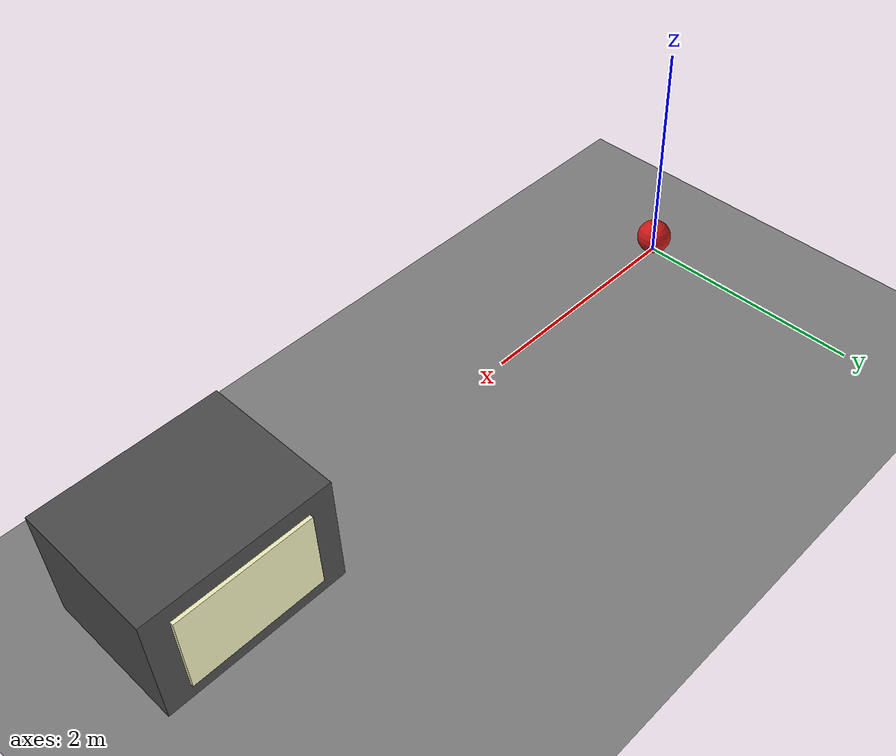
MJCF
<mujoco model="occlusion_corridor">
  <option timestep="0.002" gravity="0 0 -9.81"/>
  <visual>
    <global offwidth="1280" offheight="720"/>
  </visual>

  <default>
    <geom friction="0.6 0.005 0.03" solref="0.01 1"/>
  </default>

  <worldbody>
    <light diffuse="0.8 0.8 0.8" pos="4 0 4" dir="0 0 -1"/>

    <geom name="floor" type="plane" size="9 3 0.1" pos="6 0 0" rgba="0.5 0.5 0.5 1"/>

    <geom name="wall" type="box" size="0.75 0.6 0.5" pos="5 0 0.5"
          contype="0" conaffinity="0" rgba="0.3 0.3 0.3 1"/>

    <geom name="wall_opening" type="box" size="0.55 0.02 0.35" pos="5 0.61 0.5"
          contype="0" conaffinity="0" rgba="0.95 0.95 0.75 1"/>

    <body name="ball" pos="0 0 0.15">
      <freejoint/>
      <geom name="ball_geom" type="sphere" size="0.15" mass="0.5" rgba="0.8 0.1 0.1 1"
            condim="6"/>
    </body>
  </worldbody>

  <keyframe>
    <!-- Baseline s_0: ball at rest on the floor at x=0, given a push of
         2.6 m/s down the corridor. Sigma perturbs dpos/dvel on top of this
         at rollout time (physics/runner.py). -->
    <key name="push" qpos="0 0 0.15 1 0 0 0" qvel="4.3 0 0 0 0 0"/>
  </keyframe>
</mujoco>
